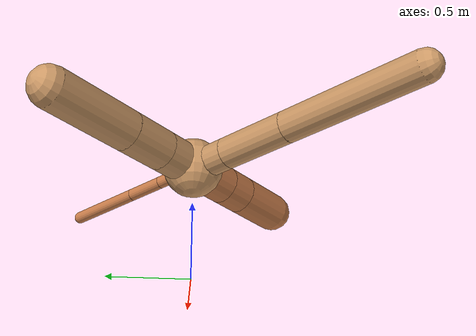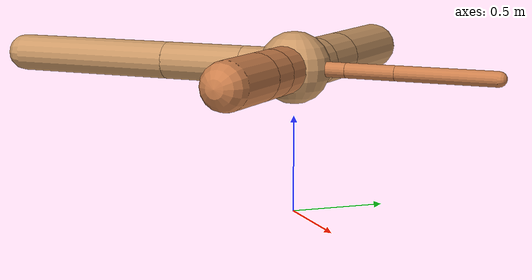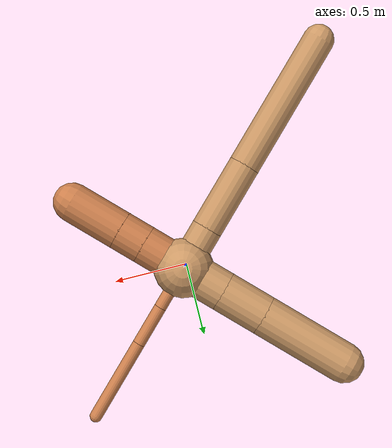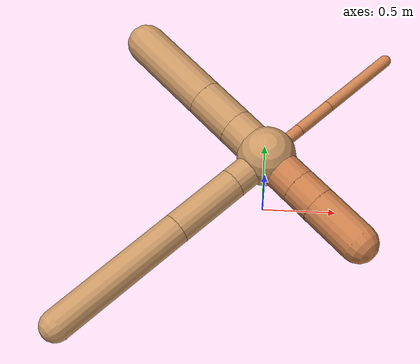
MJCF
<?xml version="1.0" ?>
<mujoco model="ant">

	<compiler angle="degree" coordinate="local" inertiafromgeom="true"/>

	<option integrator="RK4" timestep="0.01"/>

	<custom>

		<numeric data="0.0 0.0 0.55 1.0 0.0 0.0 0.0 0.0 1.0 0.0 -1.0 0.0 -1.0 0.0 1.0" name="init_qpos"/>

	</custom>

	<default>

		<joint armature="1" damping="1" limited="true"/>

		<geom conaffinity="0" condim="3" density="5.0" friction="1.5 0.1 0.1" margin="0.01" rgba="0.8 0.6 0.4 1"/>

	</default>

	<worldbody>

		<body name="torso" pos="0 0 0.75">

			<geom name="torso_geom" pos="0 0 0" size="0.1865171334922" type="sphere"/>

			<!--joint armature="0" damping="0" limited="false" margin="0.01" name="root" pos="0 0 0" type="free"/-->

			<body name="front_left_leg" pos="0 0 0">

				<geom fromto="0 0 0 0.2 0.2 0" name="aux_1_geom" size="0.03891904159747577" type="capsule" rgba=".8 .5 .3 1"/>

				<body name="aux_1" pos="0.2 0.2 0">

					<joint axis="0 0 1" name="hip_1" pos="0.0 0.0 0.0" range="-40 40" type="hinge"/>

					<geom fromto="0 0 0 0.18334738917141502 0.18334738917141502 0" name="left_leg_geom" size="0.03891904159747577" type="capsule" rgba=".8 .5 .3 1"/>

					<body pos="0.18334738917141502 0.18334738917141502 0" name="front_left_foot">

						<joint axis="-1 1 0" name="ankle_1" pos="0.0 0.0 0.0" range="30 100" type="hinge"/>

						<geom fromto="0 0 0 0.36669477834283004 0.36669477834283004 0" name="left_ankle_geom" size="0.03891904159747577" type="capsule" rgba=".8 .5 .3 1"/>

					</body>

				</body>

			</body>

			<body name="front_right_leg" pos="0 0 0">

				<geom fromto="0 0 0 -0.2 0.2 0" name="aux_2_geom" size="0.1272413160348172" type="capsule"/>

				<body name="aux_2" pos="-0.2 0.2 0">

					<joint axis="0 0 1" name="hip_2" pos="0.0 0.0 0.0" range="-40 40" type="hinge"/>

					<geom fromto="0 0 0 -0.2037256734010624 0.2037256734010624 0" name="right_leg_geom" size="0.1272413160348172" type="capsule"/>

					<body pos="-0.2037256734010624 0.2037256734010624 0" name="front_right_foot">

						<joint axis="1 1 0" name="ankle_2" pos="0.0 0.0 0.0" range="-100 -30" type="hinge"/>

						<geom fromto="0 0 0 -0.4074513468021248 0.4074513468021248 0" name="right_ankle_geom" size="0.1272413160348172" type="capsule"/>

					</body>

				</body>

			</body>

			<body name="left_back_leg" pos="0 0 0">

				<geom fromto="0 0 0 -0.2 -0.2 0" name="aux_3_geom" size="0.09823318690969096" type="capsule"/>

				<body name="aux_3" pos="-0.2 -0.2 0">

					<joint axis="0 0 1" name="hip_3" pos="0.0 0.0 0.0" range="-40 40" type="hinge"/>

					<geom fromto="0 0 0 -0.3191760886323254 -0.3191760886323254 0" name="back_leg_geom" size="0.09823318690969096" type="capsule"/>

					<body pos="-0.3191760886323254 -0.3191760886323254 0" name="left_back_foot">

						<joint axis="-1 1 0" name="ankle_3" pos="0.0 0.0 0.0" range="-100 -30" type="hinge"/>

						<geom fromto="0 0 0 -0.6383521772646508 -0.6383521772646508 0" name="third_ankle_geom" size="0.09823318690969096" type="capsule"/>

					</body>

				</body>

			</body>

			<body name="right_back_leg" pos="0 0 0">

				<geom fromto="0 0 0 0.2 -0.2 0" name="aux_4_geom" size="0.12277425900196139" type="capsule" rgba=".8 .5 .3 1"/>

				<body name="aux_4" pos="0.2 -0.2 0">

					<joint axis="0 0 1" name="hip_4" pos="0.0 0.0 0.0" range="-40 40" type="hinge"/>

					<geom fromto="0 0 0 0.12067474010424316 -0.12067474010424316 0" name="rightback_leg_geom" size="0.12277425900196139" type="capsule" rgba=".8 .5 .3 1"/>

					<body pos="0.12067474010424316 -0.12067474010424316 0" name="right_back_foot">

						<joint axis="1 1 0" name="ankle_4" pos="0.0 0.0 0.0" range="30 100" type="hinge"/>

						<geom fromto="0 0 0 0.24134948020848632 -0.24134948020848632 0" name="fourth_ankle_geom" size="0.12277425900196139" type="capsule" rgba=".8 .5 .3 1"/>

					</body>

				</body>

			</body>

		</body>

	</worldbody>

	<actuator>

		<motor ctrllimited="true" ctrlrange="-1.0 1.0" joint="hip_4" gear="150"/>

		<motor ctrllimited="true" ctrlrange="-1.0 1.0" joint="ankle_4" gear="150"/>

		<motor ctrllimited="true" ctrlrange="-1.0 1.0" joint="hip_1" gear="150"/>

		<motor ctrllimited="true" ctrlrange="-1.0 1.0" joint="ankle_1" gear="150"/>

		<motor ctrllimited="true" ctrlrange="-1.0 1.0" joint="hip_2" gear="150"/>

		<motor ctrllimited="true" ctrlrange="-1.0 1.0" joint="ankle_2" gear="150"/>

		<motor ctrllimited="true" ctrlrange="-1.0 1.0" joint="hip_3" gear="150"/>

		<motor ctrllimited="true" ctrlrange="-1.0 1.0" joint="ankle_3" gear="150"/>

	</actuator>

</mujoco>
